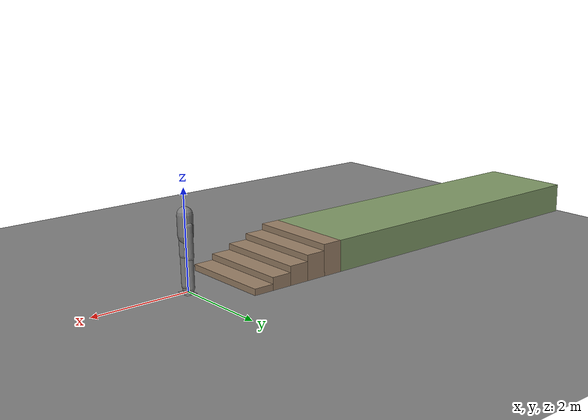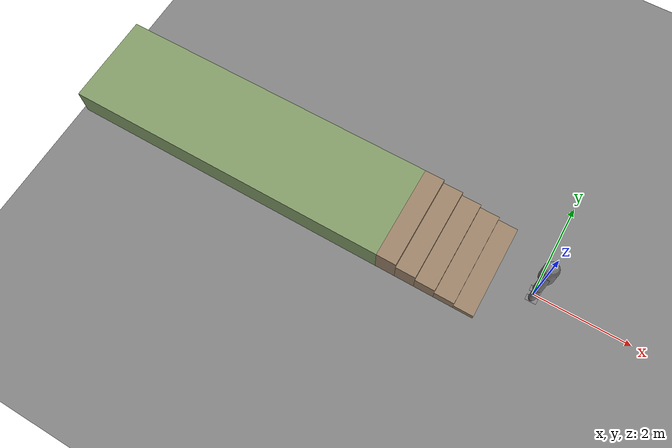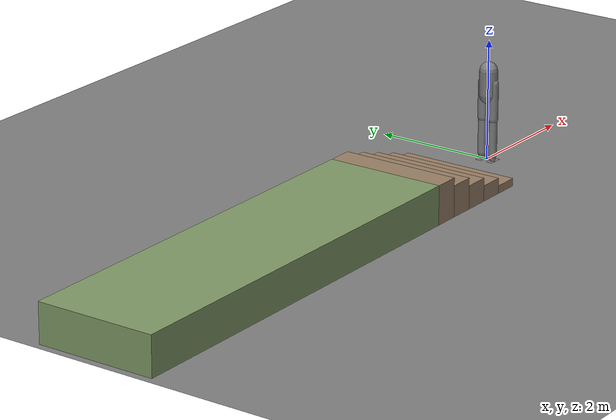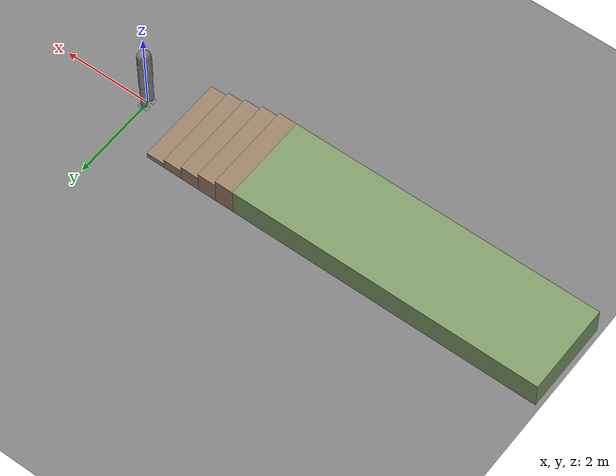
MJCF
<?xml version="1.0" ?>
<mujoco model="bipedal_robot">
    <compiler angle="radian" coordinate="local" inertiafromgeom="true"/>
    <option integrator="RK4" timestep="0.002"/>
    <default>
        <joint type="hinge" damping="0.01" frictionloss="0.0"/>
        <geom contype="1" conaffinity="1" friction="0.8 0.1 0.1" density="0"/>
    </default>
    <visual>
        <global offwidth="1280" offheight="720"/>
    </visual>
    <asset>
        <texture type="skybox" builtin="gradient" rgb1="0.3 0.5 0.7" rgb2="0 0 0" width="512" height="512"/>
        <texture name="grid" type="2d" builtin="checker" rgb1="0.1 0.1 0.1" rgb2="0.9 0.9 0.9" width="300" height="300"/>
        <material name="grid" texture="grid" texrepeat="1 1" specular="0.0"/>
    </asset>
    <worldbody>
        <geom name="floor" type="plane" size="10 10 0.1" material="grid" density="0"/>
        <!-- 5 steps: tread=0.42m, riser=0.13m — taller and narrower than v1 (was 0.55m/0.10m) -->
        <geom name="step1" type="box" pos="-1.010 0 0.065" size="0.210 1.0 0.065" rgba="0.6 0.5 0.4 1" friction="1.4 0.1 0.1" density="0"/>
        <geom name="step2" type="box" pos="-1.430 0 0.130" size="0.210 1.0 0.130" rgba="0.6 0.5 0.4 1" friction="1.4 0.1 0.1" density="0"/>
        <geom name="step3" type="box" pos="-1.850 0 0.195" size="0.210 1.0 0.195" rgba="0.6 0.5 0.4 1" friction="1.4 0.1 0.1" density="0"/>
        <geom name="step4" type="box" pos="-2.270 0 0.260" size="0.210 1.0 0.260" rgba="0.6 0.5 0.4 1" friction="1.4 0.1 0.1" density="0"/>
        <geom name="step5" type="box" pos="-2.690 0 0.325" size="0.210 1.0 0.325" rgba="0.6 0.5 0.4 1" friction="1.4 0.1 0.1" density="0"/>
        <!-- Landing starts at x=-2.90, top at z=0.65 -->
        <geom name="landing" type="box" pos="-6.400 0 0.325" size="3.500 1.0 0.325" rgba="0.5 0.6 0.4 1" friction="1.4 0.1 0.1" density="0"/>
        <body name="torso" pos="0 0 1.3">
            <joint name="slide_x" type="slide" axis="1 0 0"/>
            <joint name="slide_z" type="slide" axis="0 0 1"/>
            <joint name="hinge_y" type="hinge" axis="0 1 0" range="-0.5 0.5" damping="160.0" stiffness="9000.0"/>
            <inertial mass="10" pos="0 0 0" diaginertia="10 10 10"/>
            <geom name="torso_geom" type="capsule" fromto="0 0 -0.2 0 0 0.2" size="0.15" density="0"/>
            <body name="left_hip" pos="0 0.1 0">
                <inertial mass="2" pos="0 0 -0.3" diaginertia="0.06 0.06 0.06"/>
                <geom name="left_hip_geom" type="capsule" fromto="0 0 0 0 0 -0.6" size="0.08" density="0"/>
                <joint name="left_hip_pitch" type="hinge" axis="0 1 0" range="-1.57 1.57" damping="1.0"/>
                <body name="left_knee" pos="0 0 -0.6">
                    <inertial mass="1.5" pos="0 0 -0.3" diaginertia="0.04 0.04 0.04"/>
                    <geom name="left_knee_geom" type="capsule" fromto="0 0 0 0 0 -0.6" size="0.07" density="0"/>
                    <joint name="left_knee_pitch" type="hinge" axis="0 1 0" range="-1.57 1.57" damping="1.0"/>
                    <body name="left_ankle" pos="0 0 -0.6">
                        <inertial mass="1" pos="0 0 -0.075" diaginertia="0.01 0.01 0.01"/>
                        <geom name="left_ankle_geom" type="capsule" fromto="0 0 0 0 0 -0.07" size="0.055" density="0"/>
                        <geom name="left_heel" type="box" pos=" 0.06 0 -0.15" size="0.07 0.06 0.04" density="0"/>
                        <geom name="left_toe"  type="box" pos="-0.05 0 -0.15" size="0.05 0.06 0.04" density="0"/>
                        <joint name="left_ankle_pitch" type="hinge" axis="0 1 0" range="-0.785 0.785" damping="0.5"/>
                    </body>
                </body>
            </body>
            <body name="right_hip" pos="0 -0.1 0">
                <inertial mass="2" pos="0 0 -0.3" diaginertia="0.06 0.06 0.06"/>
                <geom name="right_hip_geom" type="capsule" fromto="0 0 0 0 0 -0.6" size="0.08" density="0"/>
                <joint name="right_hip_pitch" type="hinge" axis="0 1 0" range="-1.57 1.57" damping="1.0"/>
                <body name="right_knee" pos="0 0 -0.6">
                    <inertial mass="1.5" pos="0 0 -0.3" diaginertia="0.04 0.04 0.04"/>
                    <geom name="right_knee_geom" type="capsule" fromto="0 0 0 0 0 -0.6" size="0.07" density="0"/>
                    <joint name="right_knee_pitch" type="hinge" axis="0 1 0" range="-1.57 1.57" damping="1.0"/>
                    <body name="right_ankle" pos="0 0 -0.6">
                        <inertial mass="1" pos="0 0 -0.075" diaginertia="0.01 0.01 0.01"/>
                        <geom name="right_ankle_geom" type="capsule" fromto="0 0 0 0 0 -0.07" size="0.055" density="0"/>
                        <geom name="right_heel" type="box" pos=" 0.06 0 -0.15" size="0.07 0.06 0.04" density="0"/>
                        <geom name="right_toe"  type="box" pos="-0.05 0 -0.15" size="0.05 0.06 0.04" density="0"/>
                        <joint name="right_ankle_pitch" type="hinge" axis="0 1 0" range="-0.785 0.785" damping="0.5"/>
                    </body>
                </body>
            </body>
        </body>
    </worldbody>
    <actuator>
        <position name="left_hip_motor"    joint="left_hip_pitch"    kp="500" kv="20" ctrlrange="-1.57 1.57"/>
        <position name="left_knee_motor"   joint="left_knee_pitch"   kp="400" kv="20" ctrlrange="-1.57 0.0"/>
        <position name="left_ankle_motor"  joint="left_ankle_pitch"  kp="120" kv="10" ctrlrange="-0.785 0.785"/>
        <position name="right_hip_motor"   joint="right_hip_pitch"   kp="500" kv="20" ctrlrange="-1.57 1.57"/>
        <position name="right_knee_motor"  joint="right_knee_pitch"  kp="400" kv="20" ctrlrange="-1.57 0.0"/>
        <position name="right_ankle_motor" joint="right_ankle_pitch" kp="120" kv="10" ctrlrange="-0.785 0.785"/>
    </actuator>
    <sensor>
        <jointpos name="left_hip_pos"    joint="left_hip_pitch"/>
        <jointpos name="left_knee_pos"   joint="left_knee_pitch"/>
        <jointpos name="left_ankle_pos"  joint="left_ankle_pitch"/>
        <jointpos name="right_hip_pos"   joint="right_hip_pitch"/>
        <jointpos name="right_knee_pos"  joint="right_knee_pitch"/>
        <jointpos name="right_ankle_pos" joint="right_ankle_pitch"/>
        <jointvel name="left_hip_vel"    joint="left_hip_pitch"/>
        <jointvel name="left_knee_vel"   joint="left_knee_pitch"/>
        <jointvel name="left_ankle_vel"  joint="left_ankle_pitch"/>
        <jointvel name="right_hip_vel"   joint="right_hip_pitch"/>
        <jointvel name="right_knee_vel"  joint="right_knee_pitch"/>
        <jointvel name="right_ankle_vel" joint="right_ankle_pitch"/>
        <framepos name="torso_pos"      objtype="body" objname="torso"/>
        <framepos name="left_foot_pos"  objtype="body" objname="left_ankle"/>
        <framepos name="right_foot_pos" objtype="body" objname="right_ankle"/>
    </sensor>
</mujoco>
